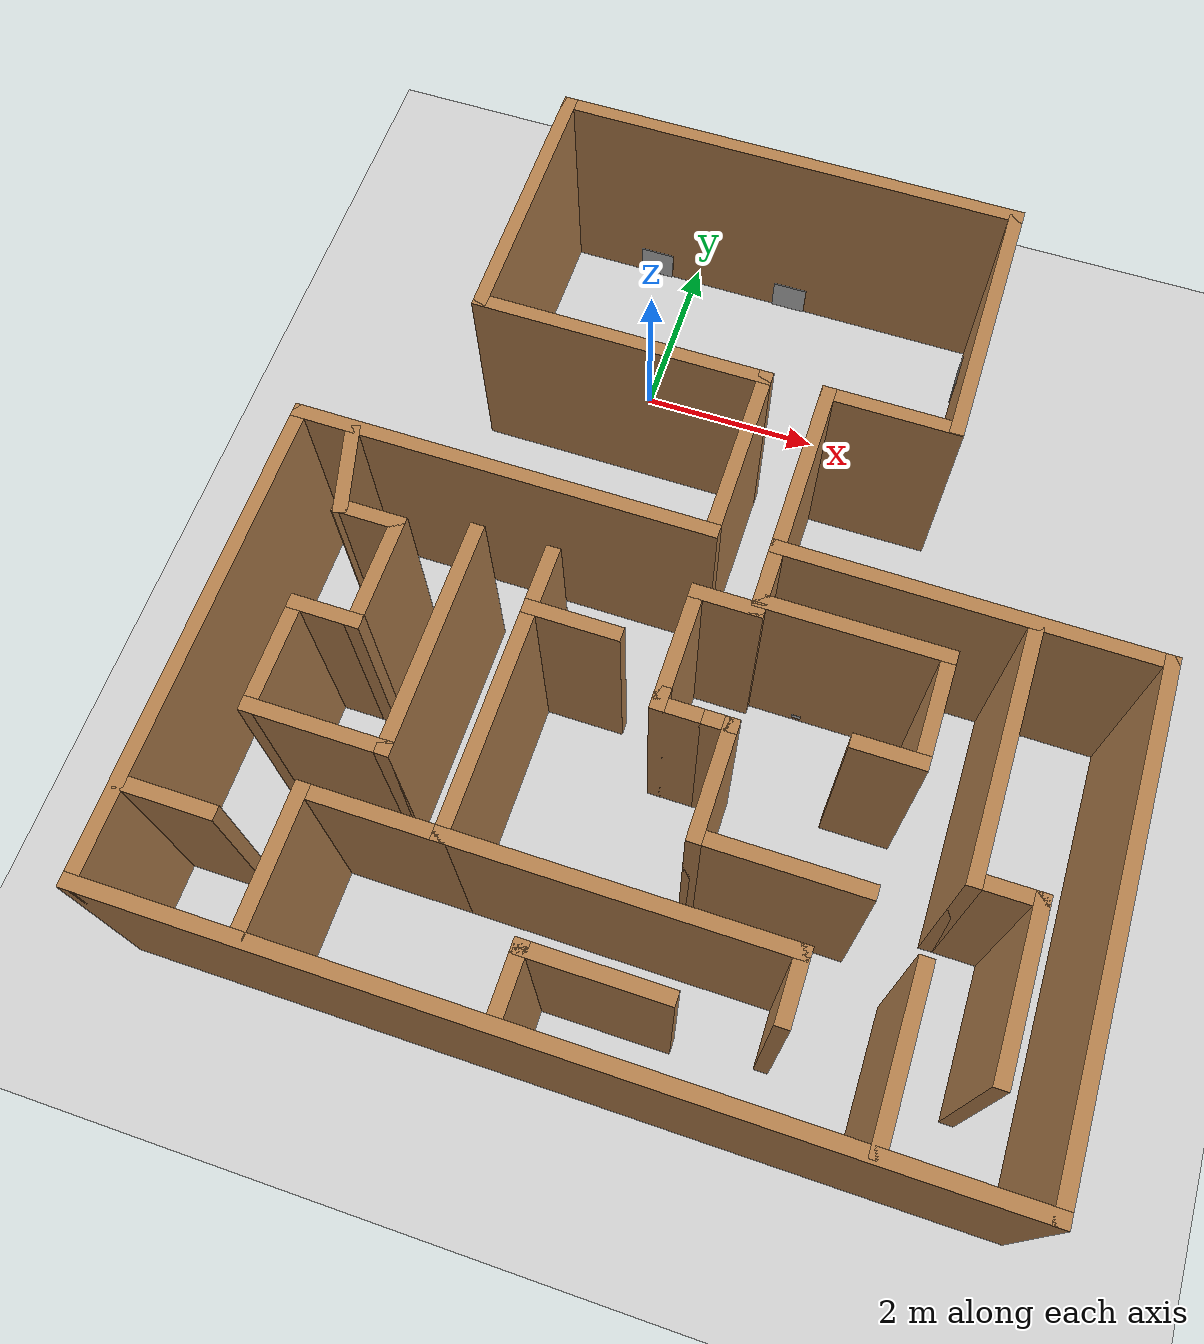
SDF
<sdf version="1.6">
 <world name="default">
  <light name="sun" type="directional">
   <pose>0 0 10 0 -0 0</pose>
   <diffuse>0.8 0.8 0.8 1</diffuse>
   <specular>0.2 0.2 0.2 1</specular>
   <attenuation>
    <range>1000</range>
    <constant>0.9</constant>
    <linear>0.01</linear>
    <quadratic>0.001</quadratic>
   </attenuation>
   <direction>-0.5 0.1 -0.9</direction>
  </light>
  <model name="ground_plane">
   <static>1</static>
   <link name="link">
    <collision name="collision">
     <geometry><plane><normal>0 0 1</normal><size>100 100</size></plane></geometry>
     <surface>
      <contact><collide_bitmask>65535</collide_bitmask></contact>
      <friction><ode><mu>100</mu><mu2>50</mu2></ode></friction>
     </surface>
    </collision>
    <visual name="visual">
     <cast_shadows>0</cast_shadows>
     <geometry><plane><normal>0 0 1</normal><size>100 100</size></plane></geometry>
     <material>
      <script><uri>file://media/materials/scripts/gazebo.material</uri><name>Gazebo/Grey</name></script>
     </material>
    </visual>
   </link>
  </model>
  <gravity>0 0 -9.8</gravity>
  <magnetic_field>6e-06 2.3e-05 -4.2e-05</magnetic_field>
  <atmosphere type="adiabatic"/>
  <physics name="default_physics" default="0" type="ode">
   <max_step_size>0.001</max_step_size>
   <real_time_factor>1</real_time_factor>
   <real_time_update_rate>1000</real_time_update_rate>
  </physics>
  <scene><ambient>0.4 0.4 0.4 1</ambient><background>0.7 0.7 0.7 1</background><shadows>1</shadows></scene>
  <audio><device>default</device></audio>
  <spherical_coordinates>
   <surface_model>EARTH_WGS84</surface_model>
   <latitude_deg>0</latitude_deg>
   <longitude_deg>0</longitude_deg>
   <elevation>0</elevation>
   <heading_deg>0</heading_deg>
  </spherical_coordinates>
  <model name="RoomMaze">
   <pose>1.58477 -2.9753 0 0 -0 0</pose>
   <link name="Wall_11">
    <collision name="Wall_11_Collision">
     <geometry><box><size>1.5 0.15 2.5</size></box></geometry>
     <pose>0 0 1.25 0 -0 0</pose>
    </collision>
    <visual name="Wall_11_Visual">
     <pose>0 0 1.25 0 -0 0</pose>
     <geometry><box><size>1.5 0.15 2.5</size></box></geometry>
     <material>
      <script><uri>file://media/materials/scripts/gazebo.material</uri><name>Gazebo/Wood</name></script>
      <ambient>1 1 1 1</ambient>
     </material>
     <meta><layer>0</layer></meta>
    </visual>
    <pose>1.25926 2.08009 0 0 -0 3.14159</pose>
   </link>
   <link name="Wall_15">
    <collision name="Wall_15_Collision">
     <geometry><box><size>2 0.15 2.5</size></box></geometry>
     <pose>0 0 1.25 0 -0 0</pose>
    </collision>
    <visual name="Wall_15_Visual">
     <pose>0 0 1.25 0 -0 0</pose>
     <geometry><box><size>2 0.15 2.5</size></box></geometry>
     <material>
      <script><uri>file://media/materials/scripts/gazebo.material</uri><name>Gazebo/Wood</name></script>
      <ambient>1 1 1 1</ambient>
     </material>
     <meta><layer>0</layer></meta>
    </visual>
    <pose>-0.075165 1.1381 0 0 -0 -1.5708</pose>
   </link>
   <link name="Wall_17">
    <collision name="Wall_17_Collision">
     <geometry><box><size>2 0.15 2.5</size></box></geometry>
     <pose>0 0 1.25 0 -0 0</pose>
    </collision>
    <visual name="Wall_17_Visual">
     <pose>0 0 1.25 0 -0 0</pose>
     <geometry><box><size>2 0.15 2.5</size></box></geometry>
     <material>
      <script><uri>file://media/materials/scripts/gazebo.material</uri><name>Gazebo/Wood</name></script>
      <ambient>1 1 1 1</ambient>
     </material>
     <meta><layer>0</layer></meta>
    </visual>
    <pose>0.584264 1.15509 0 0 -0 -1.5708</pose>
   </link>
   <link name="Wall_20">
    <collision name="Wall_20_Collision">
     <geometry><box><size>4.5 0.15 2.5</size></box></geometry>
     <pose>0 0 1.25 0 -0 0</pose>
    </collision>
    <visual name="Wall_20_Visual">
     <pose>0 0 1.25 0 -0 0</pose>
     <geometry><box><size>4.5 0.15 2.5</size></box></geometry>
     <material>
      <script><uri>file://media/materials/scripts/gazebo.material</uri><name>Gazebo/Wood</name></script>
      <ambient>1 1 1 1</ambient>
     </material>
     <meta><layer>0</layer></meta>
    </visual>
    <pose>-2.25016 0.213099 0 0 -0 3.14159</pose>
   </link>
   <link name="Wall_21">
    <collision name="Wall_21_Collision">
     <geometry><box><size>5.25 0.15 2.5</size></box></geometry>
     <pose>0 0 1.25 0 -0 0</pose>
    </collision>
    <visual name="Wall_21_Visual">
     <pose>0 0 1.25 0 -0 0</pose>
     <geometry><box><size>5.25 0.15 2.5</size></box></geometry>
     <material>
      <script><uri>file://media/materials/scripts/gazebo.material</uri><name>Gazebo/Wood</name></script>
      <ambient>1 1 1 1</ambient>
     </material>
     <meta><layer>0</layer></meta>
    </visual>
    <pose>-4.42516 -2.3369 0 0 -0 -1.5708</pose>
   </link>
   <link name="Wall_22">
    <collision name="Wall_22_Collision">
     <geometry><box><size>9 0.15 2.5</size></box></geometry>
     <pose>0 0 1.25 0 -0 0</pose>
    </collision>
    <visual name="Wall_22_Visual">
     <pose>0 0 1.25 0 -0 0</pose>
     <geometry><box><size>9 0.15 2.5</size></box></geometry>
     <material>
      <script><uri>file://media/materials/scripts/gazebo.material</uri><name>Gazebo/Wood</name></script>
      <ambient>1 1 1 1</ambient>
     </material>
     <meta><layer>0</layer></meta>
    </visual>
    <pose>-0.000165 -4.8869 0 0 -0 0</pose>
   </link>
   <link name="Wall_23">
    <collision name="Wall_23_Collision">
     <geometry><box><size>5.25 0.15 2.5</size></box></geometry>
     <pose>0 0 1.25 0 -0 0</pose>
    </collision>
    <visual name="Wall_23_Visual">
     <pose>0 0 1.25 0 -0 0</pose>
     <geometry><box><size>5.25 0.15 2.5</size></box></geometry>
     <material>
      <script><uri>file://media/materials/scripts/gazebo.material</uri><name>Gazebo/Wood</name></script>
      <ambient>1 1 1 1</ambient>
     </material>
     <meta><layer>0</layer></meta>
    </visual>
    <pose>4.42483 -2.3369 0 0 -0 1.5708</pose>
   </link>
   <link name="Wall_24">
    <collision name="Wall_24_Collision">
     <geometry><box><size>3.99061 0.15 2.5</size></box></geometry>
     <pose>0 0 1.25 0 -0 0</pose>
    </collision>
    <visual name="Wall_24_Visual">
     <pose>0 0 1.25 0 -0 0</pose>
     <geometry><box><size>3.99061 0.15 2.5</size></box></geometry>
     <material>
      <script><uri>file://media/materials/scripts/gazebo.material</uri><name>Gazebo/Wood</name></script>
      <ambient>1 1 1 1</ambient>
     </material>
     <meta><layer>0</layer></meta>
    </visual>
    <pose>2.50455 0.221595 0 0 -0 3.13717</pose>
   </link>
   <link name="Wall_25">
    <collision name="Wall_25_Collision">
     <geometry><box><size>0.75 0.15 2.5</size></box></geometry>
     <pose>0 0 1.25 0 -0 0</pose>
    </collision>
    <visual name="Wall_25_Visual">
     <pose>0 0 1.25 0 -0 0</pose>
     <geometry><box><size>0.75 0.15 2.5</size></box></geometry>
     <material>
      <script><uri>file://media/materials/scripts/gazebo.material</uri><name>Gazebo/Wood</name></script>
      <ambient>1 1 1 1</ambient>
     </material>
     <meta><layer>0</layer></meta>
    </visual>
    <pose>0.584264 -0.06991 0 0 -0 -1.5708</pose>
   </link>
   <link name="Wall_26">
    <collision name="Wall_26_Collision">
     <geometry><box><size>2 0.15 2.5</size></box></geometry>
     <pose>0 0 1.25 0 -0 0</pose>
    </collision>
    <visual name="Wall_26_Visual">
     <pose>0 0 1.25 0 -0 0</pose>
     <geometry><box><size>2 0.15 2.5</size></box></geometry>
     <material>
      <script><uri>file://media/materials/scripts/gazebo.material</uri><name>Gazebo/Wood</name></script>
      <ambient>1 1 1 1</ambient>
     </material>
     <meta><layer>0</layer></meta>
    </visual>
    <pose>1.50926 -0.36991 0 0 -0 0</pose>
   </link>
   <link name="Wall_27">
    <collision name="Wall_27_Collision">
     <geometry><box><size>1.25 0.15 2.5</size></box></geometry>
     <pose>0 0 1.25 0 -0 0</pose>
    </collision>
    <visual name="Wall_27_Visual">
     <pose>0 0 1.25 0 -0 0</pose>
     <geometry><box><size>1.25 0.15 2.5</size></box></geometry>
     <material>
      <script><uri>file://media/materials/scripts/gazebo.material</uri><name>Gazebo/Wood</name></script>
      <ambient>1 1 1 1</ambient>
     </material>
     <meta><layer>0</layer></meta>
    </visual>
    <pose>2.43426 -0.91991 0 0 -0 -1.5708</pose>
   </link>
   <link name="Wall_28">
    <collision name="Wall_28_Collision">
     <geometry><box><size>0.75 0.15 2.5</size></box></geometry>
     <pose>0 0 1.25 0 -0 0</pose>
    </collision>
    <visual name="Wall_28_Visual">
     <pose>0 0 1.25 0 -0 0</pose>
     <geometry><box><size>0.75 0.15 2.5</size></box></geometry>
     <material>
      <script><uri>file://media/materials/scripts/gazebo.material</uri><name>Gazebo/Wood</name></script>
      <ambient>1 1 1 1</ambient>
     </material>
     <meta><layer>0</layer></meta>
    </visual>
    <pose>2.13426 -1.46991 0 0 -0 3.14159</pose>
   </link>
   <link name="Wall_31">
    <collision name="Wall_31_Collision">
     <geometry><box><size>1 0.15 2.5</size></box></geometry>
     <pose>0 0 1.25 0 -0 0</pose>
    </collision>
    <visual name="Wall_31_Visual">
     <pose>0 0 1.25 0 -0 0</pose>
     <geometry><box><size>1 0.15 2.5</size></box></geometry>
     <material>
      <script><uri>file://media/materials/scripts/gazebo.material</uri><name>Gazebo/Wood</name></script>
      <ambient>1 1 1 1</ambient>
     </material>
     <meta><layer>0</layer></meta>
    </visual>
    <pose>-1.05091 -1.12058 0 0 -0 3.14159</pose>
   </link>
   <link name="Wall_32">
    <collision name="Wall_32_Collision">
     <geometry><box><size>2.5 0.15 2.5</size></box></geometry>
     <pose>0 0 1.25 0 -0 0</pose>
    </collision>
    <visual name="Wall_32_Visual">
     <pose>0 0 1.25 0 -0 0</pose>
     <geometry><box><size>2.5 0.15 2.5</size></box></geometry>
     <material>
      <script><uri>file://media/materials/scripts/gazebo.material</uri><name>Gazebo/Wood</name></script>
      <ambient>1 1 1 1</ambient>
     </material>
     <meta><layer>0</layer></meta>
    </visual>
    <pose>-1.47591 -2.29558 0 0 -0 -1.5708</pose>
   </link>
   <link name="Wall_33">
    <collision name="Wall_33_Collision">
     <geometry><box><size>3.5 0.15 2.5</size></box></geometry>
     <pose>0 0 1.25 0 -0 0</pose>
    </collision>
    <visual name="Wall_33_Visual">
     <pose>0 0 1.25 0 -0 0</pose>
     <geometry><box><size>3.5 0.15 2.5</size></box></geometry>
     <material>
      <script><uri>file://media/materials/scripts/gazebo.material</uri><name>Gazebo/Wood</name></script>
      <ambient>1 1 1 1</ambient>
     </material>
     <meta><layer>0</layer></meta>
    </visual>
    <pose>0.199086 -3.47058 0 0 -0 0</pose>
   </link>
   <link name="Wall_34">
    <collision name="Wall_34_Collision">
     <geometry><box><size>0.75 0.15 2.5</size></box></geometry>
     <pose>0 0 1.25 0 -0 0</pose>
    </collision>
    <visual name="Wall_34_Visual">
     <pose>0 0 1.25 0 -0 0</pose>
     <geometry><box><size>0.75 0.15 2.5</size></box></geometry>
     <material>
      <script><uri>file://media/materials/scripts/gazebo.material</uri><name>Gazebo/Wood</name></script>
      <ambient>1 1 1 1</ambient>
     </material>
     <meta><layer>0</layer></meta>
    </visual>
    <pose>1.87409 -3.77058 0 0 -0 -1.5708</pose>
   </link>
   <link name="Wall_36">
    <collision name="Wall_36_Collision">
     <geometry><box><size>0.25 0.15 2.5</size></box></geometry>
     <pose>0 0 1.25 0 -0 0</pose>
    </collision>
    <visual name="Wall_36_Visual">
     <pose>0 0 1.25 0 -0 0</pose>
     <geometry><box><size>0.25 0.15 2.5</size></box></geometry>
     <material>
      <script><uri>file://media/materials/scripts/gazebo.material</uri><name>Gazebo/Wood</name></script>
      <ambient>1 1 1 1</ambient>
     </material>
     <meta><layer>0</layer></meta>
    </visual>
    <pose>0.584264 -0.41991 0 0 -0 -1.5708</pose>
   </link>
   <link name="Wall_37">
    <collision name="Wall_37_Collision">
     <geometry><box><size>0.75 0.15 2.5</size></box></geometry>
     <pose>0 0 1.25 0 -0 0</pose>
    </collision>
    <visual name="Wall_37_Visual">
     <pose>0 0 1.25 0 -0 0</pose>
     <geometry><box><size>0.75 0.15 2.5</size></box></geometry>
     <material>
      <script><uri>file://media/materials/scripts/gazebo.material</uri><name>Gazebo/Wood</name></script>
      <ambient>1 1 1 1</ambient>
     </material>
     <meta><layer>0</layer></meta>
    </visual>
    <pose>0.284264 -0.46991 0 0 -0 3.14159</pose>
   </link>
   <link name="Wall_38">
    <collision name="Wall_38_Collision">
     <geometry><box><size>1.25 0.15 2.5</size></box></geometry>
     <pose>0 0 1.25 0 -0 0</pose>
    </collision>
    <visual name="Wall_38_Visual">
     <pose>0 0 1.25 0 -0 0</pose>
     <geometry><box><size>1.25 0.15 2.5</size></box></geometry>
     <material>
      <script><uri>file://media/materials/scripts/gazebo.material</uri><name>Gazebo/Wood</name></script>
      <ambient>1 1 1 1</ambient>
     </material>
     <meta><layer>0</layer></meta>
    </visual>
    <pose>-0.015736 -1.01991 0 0 -0 -1.5708</pose>
   </link>
   <link name="Wall_39">
    <collision name="Wall_39_Collision">
     <geometry><box><size>0.25 0.15 2.5</size></box></geometry>
     <pose>0 0 1.25 0 -0 0</pose>
    </collision>
    <visual name="Wall_39_Visual">
     <pose>0 0 1.25 0 -0 0</pose>
     <geometry><box><size>0.25 0.15 2.5</size></box></geometry>
     <material>
      <script><uri>file://media/materials/scripts/gazebo.material</uri><name>Gazebo/Wood</name></script>
      <ambient>1 1 1 1</ambient>
     </material>
     <meta><layer>0</layer></meta>
    </visual>
    <pose>-0.015736 -1.61991 0 0 -0 -1.5708</pose>
   </link>
   <link name="Wall_40">
    <collision name="Wall_40_Collision">
     <geometry><box><size>0.5 0.15 2.5</size></box></geometry>
     <pose>0 0 1.25 0 -0 0</pose>
    </collision>
    <visual name="Wall_40_Visual">
     <pose>0 0 1.25 0 -0 0</pose>
     <geometry><box><size>0.5 0.15 2.5</size></box></geometry>
     <material>
      <script><uri>file://media/materials/scripts/gazebo.material</uri><name>Gazebo/Wood</name></script>
      <ambient>1 1 1 1</ambient>
     </material>
     <meta><layer>0</layer></meta>
    </visual>
    <pose>0.159264 -1.66991 0 0 -0 0</pose>
   </link>
   <link name="Wall_41">
    <collision name="Wall_41_Collision">
     <geometry><box><size>0.5 0.15 2.5</size></box></geometry>
     <pose>0 0 1.25 0 -0 0</pose>
    </collision>
    <visual name="Wall_41_Visual">
     <pose>0 0 1.25 0 -0 0</pose>
     <geometry><box><size>0.5 0.15 2.5</size></box></geometry>
     <material>
      <script><uri>file://media/materials/scripts/gazebo.material</uri><name>Gazebo/Wood</name></script>
      <ambient>1 1 1 1</ambient>
     </material>
     <meta><layer>0</layer></meta>
    </visual>
    <pose>0.509264 -1.66991 0 0 -0 0</pose>
   </link>
   <link name="Wall_42">
    <collision name="Wall_42_Collision">
     <geometry><box><size>1.25 0.15 2.5</size></box></geometry>
     <pose>0 0 1.25 0 -0 0</pose>
    </collision>
    <visual name="Wall_42_Visual">
     <pose>0 0 1.25 0 -0 0</pose>
     <geometry><box><size>1.25 0.15 2.5</size></box></geometry>
     <material>
      <script><uri>file://media/materials/scripts/gazebo.material</uri><name>Gazebo/Wood</name></script>
      <ambient>1 1 1 1</ambient>
     </material>
     <meta><layer>0</layer></meta>
    </visual>
    <pose>0.684264 -2.21991 0 0 -0 -1.5708</pose>
   </link>
   <link name="Wall_43">
    <collision name="Wall_43_Collision">
     <geometry><box><size>1.75 0.15 2.5</size></box></geometry>
     <pose>0 0 1.25 0 -0 0</pose>
    </collision>
    <visual name="Wall_43_Visual">
     <pose>0 0 1.25 0 -0 0</pose>
     <geometry><box><size>1.75 0.15 2.5</size></box></geometry>
     <material>
      <script><uri>file://media/materials/scripts/gazebo.material</uri><name>Gazebo/Wood</name></script>
      <ambient>1 1 1 1</ambient>
     </material>
     <meta><layer>0</layer></meta>
    </visual>
    <pose>1.48426 -2.76991 0 0 -0 0</pose>
   </link>
   <link name="Wall_45">
    <collision name="Wall_45_Collision">
     <geometry><box><size>2.75 0.15 2.5</size></box></geometry>
     <pose>0 0 1.25 0 -0 0</pose>
    </collision>
    <visual name="Wall_45_Visual">
     <pose>0 0 1.25 0 -0 0</pose>
     <geometry><box><size>2.75 0.15 2.5</size></box></geometry>
     <material>
      <script><uri>file://media/materials/scripts/gazebo.material</uri><name>Gazebo/Wood</name></script>
      <ambient>1 1 1 1</ambient>
     </material>
     <meta><layer>0</layer></meta>
    </visual>
    <pose>3.13968 -1.08571 0 0 -0 -1.5708</pose>
   </link>
   <link name="Wall_47">
    <collision name="Wall_47_Collision">
     <geometry><box><size>0.75 0.15 2.5</size></box></geometry>
     <pose>0 0 1.25 0 -0 0</pose>
    </collision>
    <visual name="Wall_47_Visual">
     <pose>0 0 1.25 0 -0 0</pose>
     <geometry><box><size>0.75 0.15 2.5</size></box></geometry>
     <material>
      <script><uri>file://media/materials/scripts/gazebo.material</uri><name>Gazebo/Wood</name></script>
      <ambient>1 1 1 1</ambient>
     </material>
     <meta><layer>0</layer></meta>
    </visual>
    <pose>3.43968 -2.38571 0 0 -0 0</pose>
   </link>
   <link name="Wall_48">
    <collision name="Wall_48_Collision">
     <geometry><box><size>1.75 0.15 2.5</size></box></geometry>
     <pose>0 0 1.25 0 -0 0</pose>
    </collision>
    <visual name="Wall_48_Visual">
     <pose>0 0 1.25 0 -0 0</pose>
     <geometry><box><size>1.75 0.15 2.5</size></box></geometry>
     <material>
      <script><uri>file://media/materials/scripts/gazebo.material</uri><name>Gazebo/Wood</name></script>
      <ambient>1 1 1 1</ambient>
     </material>
     <meta><layer>0</layer></meta>
    </visual>
    <pose>3.73968 -3.18571 0 0 -0 -1.5708</pose>
   </link>
   <link name="Wall_5">
    <collision name="Wall_5_Collision">
     <geometry><box><size>3.25 0.15 2.5</size></box></geometry>
     <pose>0 0 1.25 0 -0 0</pose>
    </collision>
    <visual name="Wall_5_Visual">
     <pose>0 0 1.25 0 -0 0</pose>
     <geometry><box><size>3.25 0.15 2.5</size></box></geometry>
     <material>
      <script><uri>file://media/materials/scripts/gazebo.material</uri><name>Gazebo/Wood</name></script>
      <ambient>1 1 1 1</ambient>
     </material>
     <meta><layer>0</layer></meta>
    </visual>
    <pose>-1.62516 2.0631 0 0 -0 3.14159</pose>
   </link>
   <link name="Wall_50">
    <collision name="Wall_50_Collision">
     <geometry><box><size>1 0.15 2.5</size></box></geometry>
     <pose>0 0 1.25 0 -0 0</pose>
    </collision>
    <visual name="Wall_50_Visual">
     <pose>0 0 1.25 0 -0 0</pose>
     <geometry><box><size>1 0.15 2.5</size></box></geometry>
     <material>
      <script><uri>file://media/materials/scripts/gazebo.material</uri><name>Gazebo/Wood</name></script>
      <ambient>1 1 1 1</ambient>
     </material>
     <meta><layer>0</layer></meta>
    </visual>
    <pose>-3.72196 -0.256716 0 0 -0 -1.309</pose>
   </link>
   <link name="Wall_51">
    <collision name="Wall_51_Collision">
     <geometry><box><size>0.75 0.15 2.5</size></box></geometry>
     <pose>0 0 1.25 0 -0 0</pose>
    </collision>
    <visual name="Wall_51_Visual">
     <pose>0 0 1.25 0 -0 0</pose>
     <geometry><box><size>0.75 0.15 2.5</size></box></geometry>
     <material>
      <script><uri>file://media/materials/scripts/gazebo.material</uri><name>Gazebo/Wood</name></script>
      <ambient>1 1 1 1</ambient>
     </material>
     <meta><layer>0</layer></meta>
    </visual>
    <pose>-3.31197 -0.667235 0 0 -0 0</pose>
   </link>
   <link name="Wall_52">
    <collision name="Wall_52_Collision">
     <geometry><box><size>1.25 0.15 2.5</size></box></geometry>
     <pose>0 0 1.25 0 -0 0</pose>
    </collision>
    <visual name="Wall_52_Visual">
     <pose>0 0 1.25 0 -0 0</pose>
     <geometry><box><size>1.25 0.15 2.5</size></box></geometry>
     <material>
      <script><uri>file://media/materials/scripts/gazebo.material</uri><name>Gazebo/Wood</name></script>
      <ambient>1 1 1 1</ambient>
     </material>
     <meta><layer>0</layer></meta>
    </visual>
    <pose>-3.01197 -1.21724 0 0 -0 -1.5708</pose>
   </link>
   <link name="Wall_55">
    <collision name="Wall_55_Collision">
     <geometry><box><size>0.75 0.15 2.5</size></box></geometry>
     <pose>0 0 1.25 0 -0 0</pose>
    </collision>
    <visual name="Wall_55_Visual">
     <pose>0 0 1.25 0 -0 0</pose>
     <geometry><box><size>0.75 0.15 2.5</size></box></geometry>
     <material>
      <script><uri>file://media/materials/scripts/gazebo.material</uri><name>Gazebo/Wood</name></script>
      <ambient>1 1 1 1</ambient>
     </material>
     <meta><layer>0</layer></meta>
    </visual>
    <pose>-3.31197 -1.76723 0 0 -0 3.14159</pose>
   </link>
   <link name="Wall_56">
    <collision name="Wall_56_Collision">
     <geometry><box><size>1.25 0.15 2.5</size></box></geometry>
     <pose>0 0 1.25 0 -0 0</pose>
    </collision>
    <visual name="Wall_56_Visual">
     <pose>0 0 1.25 0 -0 0</pose>
     <geometry><box><size>1.25 0.15 2.5</size></box></geometry>
     <material>
      <script><uri>file://media/materials/scripts/gazebo.material</uri><name>Gazebo/Wood</name></script>
      <ambient>1 1 1 1</ambient>
     </material>
     <meta><layer>0</layer></meta>
    </visual>
    <pose>-3.61197 -2.31724 0 0 -0 -1.5708</pose>
   </link>
   <link name="Wall_57">
    <collision name="Wall_57_Collision">
     <geometry><box><size>1.5 0.15 2.5</size></box></geometry>
     <pose>0 0 1.25 0 -0 0</pose>
    </collision>
    <visual name="Wall_57_Visual">
     <pose>0 0 1.25 0 -0 0</pose>
     <geometry><box><size>1.5 0.15 2.5</size></box></geometry>
     <material>
      <script><uri>file://media/materials/scripts/gazebo.material</uri><name>Gazebo/Wood</name></script>
      <ambient>1 1 1 1</ambient>
     </material>
     <meta><layer>0</layer></meta>
    </visual>
    <pose>-2.93697 -2.86723 0 0 -0 0</pose>
   </link>
   <link name="Wall_58">
    <collision name="Wall_58_Collision">
     <geometry><box><size>2.5 0.15 2.5</size></box></geometry>
     <pose>0 0 1.25 0 -0 0</pose>
    </collision>
    <visual name="Wall_58_Visual">
     <pose>0 0 1.25 0 -0 0</pose>
     <geometry><box><size>2.5 0.15 2.5</size></box></geometry>
     <material>
      <script><uri>file://media/materials/scripts/gazebo.material</uri><name>Gazebo/Wood</name></script>
      <ambient>1 1 1 1</ambient>
     </material>
     <meta><layer>0</layer></meta>
    </visual>
    <pose>-2.26197 -1.69223 0 0 -0 1.5708</pose>
   </link>
   <link name="Wall_6">
    <collision name="Wall_6_Collision">
     <geometry><box><size>2.96033 0.15 2.5</size></box></geometry>
     <pose>0 0 1.25 0 -0 0</pose>
    </collision>
    <visual name="Wall_6_Visual">
     <pose>0 0 1.25 0 -0 0</pose>
     <geometry><box><size>2.96033 0.15 2.5</size></box></geometry>
     <material>
      <script><uri>file://media/materials/scripts/gazebo.material</uri><name>Gazebo/Wood</name></script>
      <ambient>1 1 1 1</ambient>
     </material>
     <meta><layer>0</layer></meta>
    </visual>
    <pose>-3.17516 3.48149 0 0 -0 1.5708</pose>
   </link>
   <link name="Wall_60">
    <collision name="Wall_60_Collision">
     <geometry><box><size>0.75 0.15 2.5</size></box></geometry>
     <pose>0 0 1.25 0 -0 0</pose>
    </collision>
    <visual name="Wall_60_Visual">
     <pose>0 0 1.25 0 -0 0</pose>
     <geometry><box><size>0.75 0.15 2.5</size></box></geometry>
     <material>
      <script><uri>file://media/materials/scripts/gazebo.material</uri><name>Gazebo/Wood</name></script>
      <ambient>1 1 1 1</ambient>
     </material>
     <meta><layer>0</layer></meta>
    </visual>
    <pose>-1.47591 -0.820583 0 0 -0 1.5708</pose>
   </link>
   <link name="Wall_62">
    <collision name="Wall_62_Collision">
     <geometry><box><size>1.5 0.15 2.5</size></box></geometry>
     <pose>0 0 1.25 0 -0 0</pose>
    </collision>
    <visual name="Wall_62_Visual">
     <pose>0 0 1.25 0 -0 0</pose>
     <geometry><box><size>1.5 0.15 2.5</size></box></geometry>
     <material>
      <script><uri>file://media/materials/scripts/gazebo.material</uri><name>Gazebo/Wood</name></script>
      <ambient>1 1 1 1</ambient>
     </material>
     <meta><layer>0</layer></meta>
    </visual>
    <pose>-2.15091 -3.47058 0 0 -0 3.14159</pose>
   </link>
   <link name="Wall_63">
    <collision name="Wall_63_Collision">
     <geometry><box><size>1.5 0.15 2.5</size></box></geometry>
     <pose>0 0 1.25 0 -0 0</pose>
    </collision>
    <visual name="Wall_63_Visual">
     <pose>0 0 1.25 0 -0 0</pose>
     <geometry><box><size>1.5 0.15 2.5</size></box></geometry>
     <material>
      <script><uri>file://media/materials/scripts/gazebo.material</uri><name>Gazebo/Wood</name></script>
      <ambient>1 1 1 1</ambient>
     </material>
     <meta><layer>0</layer></meta>
    </visual>
    <pose>-2.82591 -4.14558 0 0 -0 -1.5708</pose>
   </link>
   <link name="Wall_65">
    <collision name="Wall_65_Collision">
     <geometry><box><size>0.75 0.15 2.5</size></box></geometry>
     <pose>0 0 1.25 0 -0 0</pose>
    </collision>
    <visual name="Wall_65_Visual">
     <pose>0 0 1.25 0 -0 0</pose>
     <geometry><box><size>0.75 0.15 2.5</size></box></geometry>
     <material>
      <script><uri>file://media/materials/scripts/gazebo.material</uri><name>Gazebo/Wood</name></script>
      <ambient>1 1 1 1</ambient>
     </material>
     <meta><layer>0</layer></meta>
    </visual>
    <pose>-0.459562 -4.49138 0 0 -0 1.5708</pose>
   </link>
   <link name="Wall_66">
    <collision name="Wall_66_Collision">
     <geometry><box><size>1.5 0.15 2.5</size></box></geometry>
     <pose>0 0 1.25 0 -0 0</pose>
    </collision>
    <visual name="Wall_66_Visual">
     <pose>0 0 1.25 0 -0 0</pose>
     <geometry><box><size>1.5 0.15 2.5</size></box></geometry>
     <material>
      <script><uri>file://media/materials/scripts/gazebo.material</uri><name>Gazebo/Wood</name></script>
      <ambient>1 1 1 1</ambient>
     </material>
     <meta><layer>0</layer></meta>
    </visual>
    <pose>0.215438 -4.19138 0 0 -0 0</pose>
   </link>
   <link name="Wall_68">
    <collision name="Wall_68_Collision">
     <geometry><box><size>1.75 0.15 2.5</size></box></geometry>
     <pose>0 0 1.25 0 -0 0</pose>
    </collision>
    <visual name="Wall_68_Visual">
     <pose>0 0 1.25 0 -0 0</pose>
     <geometry><box><size>1.75 0.15 2.5</size></box></geometry>
     <material>
      <script><uri>file://media/materials/scripts/gazebo.material</uri><name>Gazebo/Wood</name></script>
      <ambient>1 1 1 1</ambient>
     </material>
     <meta><layer>0</layer></meta>
    </visual>
    <pose>2.89772 -4.05187 0 0 -0 1.5708</pose>
   </link>
   <link name="Wall_7">
    <collision name="Wall_7_Collision">
     <geometry><box><size>5.25 0.15 2.5</size></box></geometry>
     <pose>0 0 1.25 0 -0 0</pose>
    </collision>
    <visual name="Wall_7_Visual">
     <pose>0 0 1.25 0 -0 0</pose>
     <geometry><box><size>5.25 0.15 2.5</size></box></geometry>
     <material>
      <script><uri>file://media/materials/scripts/gazebo.material</uri><name>Gazebo/Wood</name></script>
      <ambient>1 1 1 1</ambient>
     </material>
     <meta><layer>0</layer></meta>
    </visual>
    <pose>-0.625165 4.88665 0 0 -0 0</pose>
   </link>
   <link name="Wall_70">
    <collision name="Wall_70_Collision">
     <geometry><box><size>1 0.15 2.5</size></box></geometry>
     <pose>0 0 1.25 0 -0 0</pose>
    </collision>
    <visual name="Wall_70_Visual">
     <pose>0 0 1.25 0 -0 0</pose>
     <geometry><box><size>1 0.15 2.5</size></box></geometry>
     <material>
      <script><uri>file://media/materials/scripts/gazebo.material</uri><name>Gazebo/Wood</name></script>
      <ambient>1 1 1 1</ambient>
     </material>
     <meta><layer>0</layer></meta>
    </visual>
    <pose>-3.95139 -3.91425 0 0 -0 0</pose>
   </link>
   <link name="Wall_8">
    <collision name="Wall_8_Collision">
     <geometry><box><size>2.94901 0.15 2.5</size></box></geometry>
     <pose>0 0 1.25 0 -0 0</pose>
    </collision>
    <visual name="Wall_8_Visual">
     <pose>0 0 1.25 0 -0 0</pose>
     <geometry><box><size>2.94901 0.15 2.5</size></box></geometry>
     <material>
      <script><uri>file://media/materials/scripts/gazebo.material</uri><name>Gazebo/Wood</name></script>
      <ambient>1 1 1 1</ambient>
     </material>
     <meta><layer>0</layer></meta>
    </visual>
    <pose>1.92955 3.48715 0 0 -0 -1.56743</pose>
   </link>
   <static>1</static>
  </model>
  <model name="frame">
   <pose>2.08893 -1.72628 0.06 0 -0 1.57079</pose>
   <link name="link">
    <inertial>
     <mass>1</mass>
     <inertia>
      <ixx>0.166667</ixx>
      <ixy>0</ixy>
      <ixz>0</ixz>
      <iyy>0.166667</iyy>
      <iyz>0</iyz>
      <izz>0.166667</izz>
     </inertia>
    </inertial>
    <collision name="collision"><geometry><box><size>0.1 0.002 0.1</size></box></geometry></collision>
    <visual name="visual">
     <geometry><box><size>0.1 0.002 0.1</size></box></geometry>
     <material>
      <script>
       <uri>model://frames/materials/scripts</uri>
       <uri>model://frames/materials/textures</uri>
       <name>maze/Diffuse</name>
      </script>
     </material>
    </visual>
   </link>
  </model>
  <model name="frame_0">
   <pose>2.77812 -3.42537 0.1 4e-06 -0 0.000522</pose>
   <link name="link">
    <inertial>
     <mass>1</mass>
     <inertia>
      <ixx>0.166667</ixx>
      <ixy>0</ixy>
      <ixz>0</ixz>
      <iyy>0.166667</iyy>
      <iyz>0</iyz>
      <izz>0.166667</izz>
     </inertia>
    </inertial>
    <collision name="collision"><geometry><box><size>0.1 0.002 0.07</size></box></geometry></collision>
    <visual name="visual">
     <geometry><box><size>0.1 0.002 0.07</size></box></geometry>
     <material>
      <script>
       <uri>model://frames/materials/scripts</uri>
       <uri>model://frames/materials/textures</uri>
       <name>exit/Diffuse</name>
      </script>
     </material>
    </visual>
   </link>
  </model>
  <model name="frame_1">
   <pose>2.70434 -0.815106 0.2 0 -0 -2e-06</pose>
   <link name="link">
    <inertial>
     <mass>1</mass>
     <inertia>
      <ixx>0.166667</ixx>
      <ixy>0</ixy>
      <ixz>0</ixz>
      <iyy>0.166667</iyy>
      <iyz>0</iyz>
      <izz>0.166667</izz>
     </inertia>
    </inertial>
    <collision name="collision"><geometry><box><size>0.4 0.010204 0.7</size></box></geometry></collision>
    <visual name="visual">
     <geometry><box><size>0.4 0.010204 0.4</size></box></geometry>
     <material>
      <script>
       <uri>model://frames/materials/scripts</uri>
       <uri>model://frames/materials/textures</uri>
       <name>LetterA/Diffuse</name>
      </script>
     </material>
    </visual>
   </link>
  </model>
  <model name="frame_2">
   <pose>-1.51027 -0.156917 0.2 0 0 -1.57079</pose>
   <link name="link">
    <inertial>
     <mass>1</mass>
     <inertia>
      <ixx>0.166667</ixx>
      <ixy>0</ixy>
      <ixz>0</ixz>
      <iyy>0.166667</iyy>
      <iyz>0</iyz>
      <izz>0.166667</izz>
     </inertia>
    </inertial>
    <collision name="collision"><geometry><box><size>0.4 0.010204 0.7</size></box></geometry></collision>
    <visual name="visual">
     <geometry><box><size>0.4 0.010204 0.4</size></box></geometry>
     <material>
      <script>
       <uri>model://frames/materials/scripts</uri>
       <uri>model://frames/materials/textures</uri>
       <name>LetterP/Diffuse</name>
      </script>
     </material>
    </visual>
   </link>
  </model>
  <model name="frame_3">
   <pose>1.19721 1.83123 0.2 -2e-06 0 1.9e-05</pose>
   <link name="link">
    <inertial>
     <mass>1</mass>
     <inertia>
      <ixx>0.166667</ixx>
      <ixy>0</ixy>
      <ixz>0</ixz>
      <iyy>0.166667</iyy>
      <iyz>0</iyz>
      <izz>0.166667</izz>
     </inertia>
    </inertial>
    <collision name="collision"><geometry><box><size>0.4 0.010204 0.7</size></box></geometry></collision>
    <visual name="visual">
     <geometry><box><size>0.4 0.010204 0.4</size></box></geometry>
     <material>
      <script>
       <uri>model://frames/materials/scripts</uri>
       <uri>model://frames/materials/textures</uri>
       <name>LetterP/Diffuse</name>
      </script>
     </material>
    </visual>
   </link>
  </model>
  <model name="frame_4">
   <pose>3.43154 1.30501 0.2 2e-06 -0 -1.56745</pose>
   <link name="link">
    <inertial>
     <mass>1</mass>
     <inertia>
      <ixx>0.166667</ixx>
      <ixy>0</ixy>
      <ixz>0</ixz>
      <iyy>0.166667</iyy>
      <iyz>0</iyz>
      <izz>0.166667</izz>
     </inertia>
    </inertial>
    <collision name="collision"><geometry><box><size>0.4 0.010204 0.7</size></box></geometry></collision>
    <visual name="visual">
     <geometry><box><size>0.4 0.010204 0.4</size></box></geometry>
     <material>
      <script>
       <uri>model://frames/materials/scripts</uri>
       <uri>model://frames/materials/textures</uri>
       <name>LetterE/Diffuse</name>
      </script>
     </material>
    </visual>
   </link>
  </model>
  <model name="frame_5">
   <pose>-0.500096 1.83037 0.2 0 1e-06 -0.000153</pose>
   <link name="link">
    <inertial>
     <mass>1</mass>
     <inertia>
      <ixx>0.166667</ixx>
      <ixy>0</ixy>
      <ixz>0</ixz>
      <iyy>0.166667</iyy>
      <iyz>0</iyz>
      <izz>0.166667</izz>
     </inertia>
    </inertial>
    <collision name="collision"><geometry><box><size>0.4 0.010204 0.7</size></box></geometry></collision>
    <visual name="visual">
     <geometry><box><size>0.4 0.010204 0.4</size></box></geometry>
     <material>
      <script>
       <uri>model://frames/materials/scripts</uri>
       <uri>model://frames/materials/textures</uri>
       <name>LetterL/Diffuse</name>
      </script>
     </material>
    </visual>
   </link>
  </model>
 </world>
</sdf>
